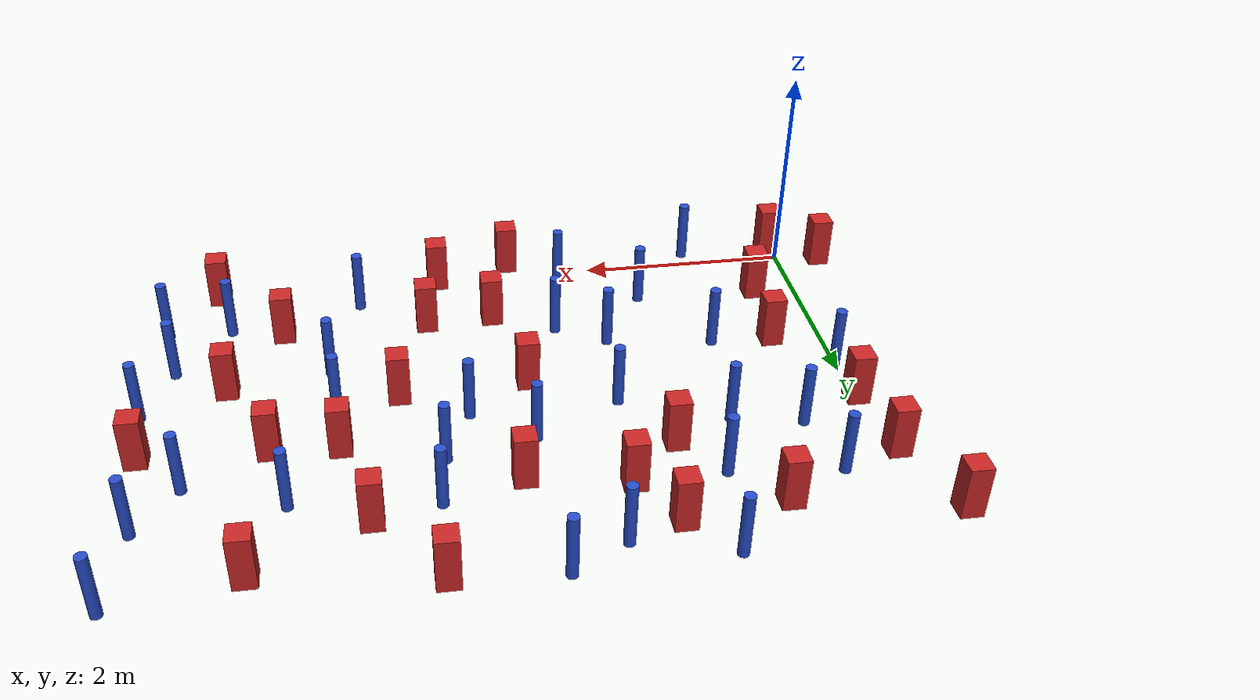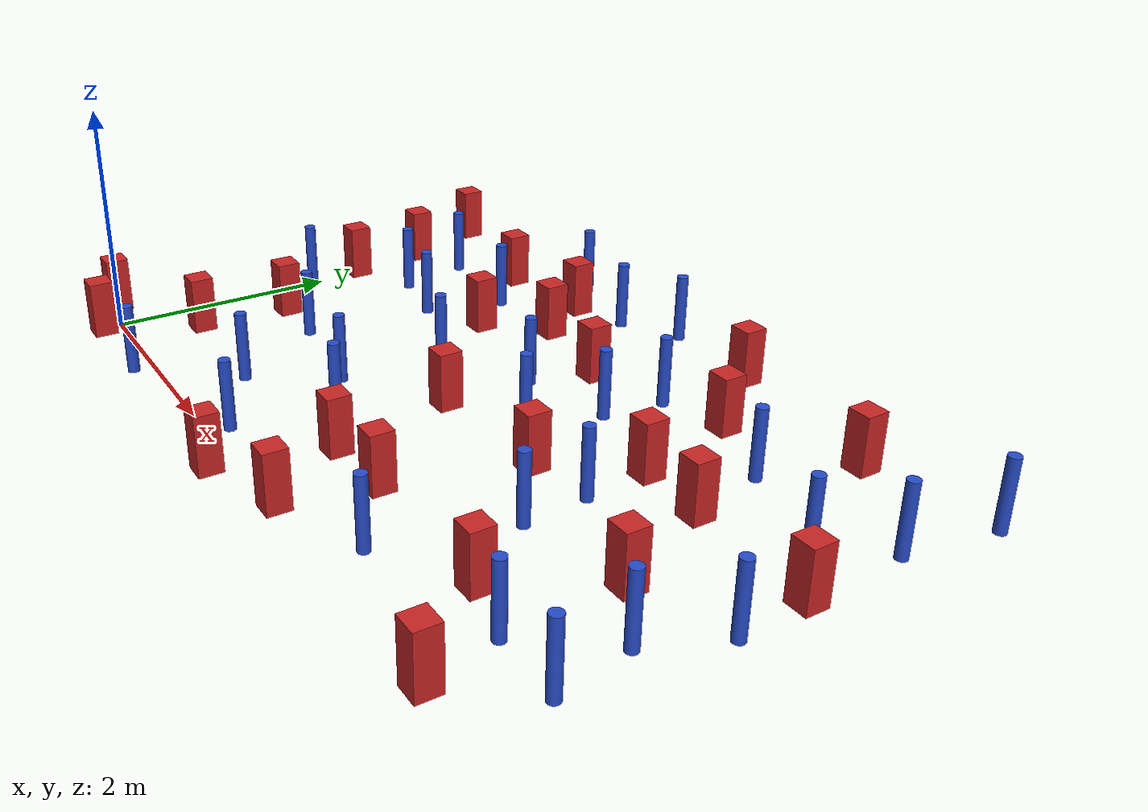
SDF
<sdf version="1.6">
 <model name="dense_30">
  <model name="pole_obstacle3">
   <static>true</static>
   <pose>0.546766999606 2.6899849425 7.38925637345e-09 -8.471706928e-08 1.2497676512e-08 -1.74513093015e-07</pose>
   <link name="link">
    <pose>0 0 0.3 0 -0 0</pose>
    <inertial>
     <mass>1</mass>
     <inertia><ixx>0.145833</ixx><ixy>0</ixy><ixz>0</ixz><iyy>0.145833</iyy><iyz>0</iyz><izz>0.125</izz></inertia>
    </inertial>
    <collision name="collision">
     <geometry><cylinder><radius>0.05</radius><length>.6</length></cylinder></geometry>
    </collision>
    <visual name="visual">
     <geometry><cylinder><radius>0.05</radius><length>.6</length></cylinder></geometry>
     <material>
      <script><name>Gazebo/Blue</name><uri>file://media/materials/scripts/gazebo.material</uri></script>
     </material>
    </visual>
   </link>
  </model>
  <model name="pole_obstacle7">
   <static>true</static>
   <pose>3.74739690199 3.30398144632 7.38925637345e-09 -8.47170692798e-08 1.24976764939e-08 -1.74513093025e-07</pose>
   <link name="link">
    <pose>0 0 0.3 0 -0 0</pose>
    <inertial>
     <mass>1</mass>
     <inertia><ixx>0.145833</ixx><ixy>0</ixy><ixz>0</ixz><iyy>0.145833</iyy><iyz>0</iyz><izz>0.125</izz></inertia>
    </inertial>
    <collision name="collision">
     <geometry><cylinder><radius>0.05</radius><length>.6</length></cylinder></geometry>
    </collision>
    <visual name="visual">
     <geometry><cylinder><radius>0.05</radius><length>.6</length></cylinder></geometry>
     <material>
      <script><name>Gazebo/Blue</name><uri>file://media/materials/scripts/gazebo.material</uri></script>
     </material>
    </visual>
   </link>
  </model>
  <model name="pole_obstacle17">
   <static>true</static>
   <pose>6.20936333357 3.32457884415 7.38925637345e-09 -8.47170692798e-08 1.24976764937e-08 -1.74513093023e-07</pose>
   <link name="link">
    <pose>0 0 0.3 0 -0 0</pose>
    <inertial>
     <mass>1</mass>
     <inertia><ixx>0.145833</ixx><ixy>0</ixy><ixz>0</ixz><iyy>0.145833</iyy><iyz>0</iyz><izz>0.125</izz></inertia>
    </inertial>
    <collision name="collision">
     <geometry><cylinder><radius>0.05</radius><length>.6</length></cylinder></geometry>
    </collision>
    <visual name="visual">
     <geometry><cylinder><radius>0.05</radius><length>.6</length></cylinder></geometry>
     <material>
      <script><name>Gazebo/Blue</name><uri>file://media/materials/scripts/gazebo.material</uri></script>
     </material>
    </visual>
   </link>
  </model>
  <model name="square_post_obstacle28">
   <static>true</static>
   <pose>5.1523337224 2.47797331997 1.91545236811e-07 -7.35059704564e-06 1.12565212e-07 2.39332434364e-05</pose>
   <link name="link">
    <pose>0 0 0.25 0 -0 0</pose>
    <inertial>
     <mass>100</mass>
     <inertia>
      <ixx>0.166667</ixx>
      <ixy>0</ixy>
      <ixz>0</ixz>
      <iyy>0.166667</iyy>
      <iyz>0</iyz>
      <izz>0.166667</izz>
     </inertia>
    </inertial>
    <collision name="collision"><geometry><box><size>.2 .2 .5</size></box></geometry></collision>
    <visual name="visual">
     <geometry><box><size>.2 .2 .5</size></box></geometry>
     <material>
      <script><name>Gazebo/Red</name><uri>file://media/materials/scripts/gazebo.material</uri></script>
     </material>
    </visual>
   </link>
  </model>
  <model name="pole_obstacle22">
   <static>true</static>
   <pose>2.84004689693 4.20362259301 7.38925637345e-09 -8.47170692798e-08 1.24976765033e-08 -1.74513093019e-07</pose>
   <link name="link">
    <pose>0 0 0.3 0 -0 0</pose>
    <inertial>
     <mass>1</mass>
     <inertia><ixx>0.145833</ixx><ixy>0</ixy><ixz>0</ixz><iyy>0.145833</iyy><iyz>0</iyz><izz>0.125</izz></inertia>
    </inertial>
    <collision name="collision">
     <geometry><cylinder><radius>0.05</radius><length>.6</length></cylinder></geometry>
    </collision>
    <visual name="visual">
     <geometry><cylinder><radius>0.05</radius><length>.6</length></cylinder></geometry>
     <material>
      <script><name>Gazebo/Blue</name><uri>file://media/materials/scripts/gazebo.material</uri></script>
     </material>
    </visual>
   </link>
  </model>
  <model name="pole_obstacle33">
   <static>true</static>
   <pose>6.04524268277 1.26037000073 7.38925637345e-09 -8.471706928e-08 1.24976765134e-08 -1.74513093015e-07</pose>
   <link name="link">
    <pose>0 0 0.3 0 -0 0</pose>
    <inertial>
     <mass>1</mass>
     <inertia><ixx>0.145833</ixx><ixy>0</ixy><ixz>0</ixz><iyy>0.145833</iyy><iyz>0</iyz><izz>0.125</izz></inertia>
    </inertial>
    <collision name="collision">
     <geometry><cylinder><radius>0.05</radius><length>.6</length></cylinder></geometry>
    </collision>
    <visual name="visual">
     <geometry><cylinder><radius>0.05</radius><length>.6</length></cylinder></geometry>
     <material>
      <script><name>Gazebo/Blue</name><uri>file://media/materials/scripts/gazebo.material</uri></script>
     </material>
    </visual>
   </link>
  </model>
  <model name="square_post_obstacle35">
   <static>true</static>
   <pose>-0.411803076474 3.93008149344 1.91545236811e-07 -7.35059704564e-06 1.12565212e-07 2.39332434364e-05</pose>
   <link name="link">
    <pose>0 0 0.25 0 -0 0</pose>
    <inertial>
     <mass>100</mass>
     <inertia>
      <ixx>0.166667</ixx>
      <ixy>0</ixy>
      <ixz>0</ixz>
      <iyy>0.166667</iyy>
      <iyz>0</iyz>
      <izz>0.166667</izz>
     </inertia>
    </inertial>
    <collision name="collision"><geometry><box><size>.2 .2 .5</size></box></geometry></collision>
    <visual name="visual">
     <geometry><box><size>.2 .2 .5</size></box></geometry>
     <material>
      <script><name>Gazebo/Red</name><uri>file://media/materials/scripts/gazebo.material</uri></script>
     </material>
    </visual>
   </link>
  </model>
  <model name="pole_obstacle35">
   <static>true</static>
   <pose>6.29903527453 1.85566580085 7.38925637345e-09 -8.471706928e-08 1.24976765134e-08 -1.74513093015e-07</pose>
   <link name="link">
    <pose>0 0 0.3 0 -0 0</pose>
    <inertial>
     <mass>1</mass>
     <inertia><ixx>0.145833</ixx><ixy>0</ixy><ixz>0</ixz><iyy>0.145833</iyy><iyz>0</iyz><izz>0.125</izz></inertia>
    </inertial>
    <collision name="collision">
     <geometry><cylinder><radius>0.05</radius><length>.6</length></cylinder></geometry>
    </collision>
    <visual name="visual">
     <geometry><cylinder><radius>0.05</radius><length>.6</length></cylinder></geometry>
     <material>
      <script><name>Gazebo/Blue</name><uri>file://media/materials/scripts/gazebo.material</uri></script>
     </material>
    </visual>
   </link>
  </model>
  <model name="square_post_obstacle41">
   <static>true</static>
   <pose>0.429046198631 0.628386670897 1.91545236811e-07 -7.35059704564e-06 1.12565212e-07 2.39332434364e-05</pose>
   <link name="link">
    <pose>0 0 0.25 0 -0 0</pose>
    <inertial>
     <mass>100</mass>
     <inertia>
      <ixx>0.166667</ixx>
      <ixy>0</ixy>
      <ixz>0</ixz>
      <iyy>0.166667</iyy>
      <iyz>0</iyz>
      <izz>0.166667</izz>
     </inertia>
    </inertial>
    <collision name="collision"><geometry><box><size>.2 .2 .5</size></box></geometry></collision>
    <visual name="visual">
     <geometry><box><size>.2 .2 .5</size></box></geometry>
     <material>
      <script><name>Gazebo/Red</name><uri>file://media/materials/scripts/gazebo.material</uri></script>
     </material>
    </visual>
   </link>
  </model>
  <model name="square_post_obstacle47">
   <static>true</static>
   <pose>-0.119099648137 3.15597819469 1.91545236811e-07 -7.35059704564e-06 1.12565212e-07 2.39332434364e-05</pose>
   <link name="link">
    <pose>0 0 0.25 0 -0 0</pose>
    <inertial>
     <mass>100</mass>
     <inertia>
      <ixx>0.166667</ixx>
      <ixy>0</ixy>
      <ixz>0</ixz>
      <iyy>0.166667</iyy>
      <iyz>0</iyz>
      <izz>0.166667</izz>
     </inertia>
    </inertial>
    <collision name="collision"><geometry><box><size>.2 .2 .5</size></box></geometry></collision>
    <visual name="visual">
     <geometry><box><size>.2 .2 .5</size></box></geometry>
     <material>
      <script><name>Gazebo/Red</name><uri>file://media/materials/scripts/gazebo.material</uri></script>
     </material>
    </visual>
   </link>
  </model>
  <model name="pole_obstacle50">
   <static>true</static>
   <pose>4.63285295188 1.41048805466 7.38925637345e-09 -8.471706928e-08 1.24976765134e-08 -1.74513093015e-07</pose>
   <link name="link">
    <pose>0 0 0.3 0 -0 0</pose>
    <inertial>
     <mass>1</mass>
     <inertia><ixx>0.145833</ixx><ixy>0</ixy><ixz>0</ixz><iyy>0.145833</iyy><iyz>0</iyz><izz>0.125</izz></inertia>
    </inertial>
    <collision name="collision">
     <geometry><cylinder><radius>0.05</radius><length>.6</length></cylinder></geometry>
    </collision>
    <visual name="visual">
     <geometry><cylinder><radius>0.05</radius><length>.6</length></cylinder></geometry>
     <material>
      <script><name>Gazebo/Blue</name><uri>file://media/materials/scripts/gazebo.material</uri></script>
     </material>
    </visual>
   </link>
  </model>
  <model name="square_post_obstacle53">
   <static>true</static>
   <pose>3.05797361296 3.10499686478 1.91545236811e-07 -7.35059704564e-06 1.12565212e-07 2.39332434364e-05</pose>
   <link name="link">
    <pose>0 0 0.25 0 -0 0</pose>
    <inertial>
     <mass>100</mass>
     <inertia>
      <ixx>0.166667</ixx>
      <ixy>0</ixy>
      <ixz>0</ixz>
      <iyy>0.166667</iyy>
      <iyz>0</iyz>
      <izz>0.166667</izz>
     </inertia>
    </inertial>
    <collision name="collision"><geometry><box><size>.2 .2 .5</size></box></geometry></collision>
    <visual name="visual">
     <geometry><box><size>.2 .2 .5</size></box></geometry>
     <material>
      <script><name>Gazebo/Red</name><uri>file://media/materials/scripts/gazebo.material</uri></script>
     </material>
    </visual>
   </link>
  </model>
  <model name="pole_obstacle57">
   <static>true</static>
   <pose>3.67862025897 2.76741316051 7.38925637345e-09 -8.47170692798e-08 1.24976764939e-08 -1.74513093025e-07</pose>
   <link name="link">
    <pose>0 0 0.3 0 -0 0</pose>
    <inertial>
     <mass>1</mass>
     <inertia><ixx>0.145833</ixx><ixy>0</ixy><ixz>0</ixz><iyy>0.145833</iyy><iyz>0</iyz><izz>0.125</izz></inertia>
    </inertial>
    <collision name="collision">
     <geometry><cylinder><radius>0.05</radius><length>.6</length></cylinder></geometry>
    </collision>
    <visual name="visual">
     <geometry><cylinder><radius>0.05</radius><length>.6</length></cylinder></geometry>
     <material>
      <script><name>Gazebo/Blue</name><uri>file://media/materials/scripts/gazebo.material</uri></script>
     </material>
    </visual>
   </link>
  </model>
  <model name="pole_obstacle58">
   <static>true</static>
   <pose>0.397705272501 3.34039945876 7.38925637345e-09 -8.471706928e-08 1.24976765084e-08 -1.74513093017e-07</pose>
   <link name="link">
    <pose>0 0 0.3 0 -0 0</pose>
    <inertial>
     <mass>1</mass>
     <inertia><ixx>0.145833</ixx><ixy>0</ixy><ixz>0</ixz><iyy>0.145833</iyy><iyz>0</iyz><izz>0.125</izz></inertia>
    </inertial>
    <collision name="collision">
     <geometry><cylinder><radius>0.05</radius><length>.6</length></cylinder></geometry>
    </collision>
    <visual name="visual">
     <geometry><cylinder><radius>0.05</radius><length>.6</length></cylinder></geometry>
     <material>
      <script><name>Gazebo/Blue</name><uri>file://media/materials/scripts/gazebo.material</uri></script>
     </material>
    </visual>
   </link>
  </model>
  <model name="square_post_obstacle66">
   <static>true</static>
   <pose>4.55335231712 2.51744634531 1.91545236811e-07 -7.35059704564e-06 1.12565212e-07 2.39332434364e-05</pose>
   <link name="link">
    <pose>0 0 0.25 0 -0 0</pose>
    <inertial>
     <mass>100</mass>
     <inertia>
      <ixx>0.166667</ixx>
      <ixy>0</ixy>
      <ixz>0</ixz>
      <iyy>0.166667</iyy>
      <iyz>0</iyz>
      <izz>0.166667</izz>
     </inertia>
    </inertial>
    <collision name="collision"><geometry><box><size>.2 .2 .5</size></box></geometry></collision>
    <visual name="visual">
     <geometry><box><size>.2 .2 .5</size></box></geometry>
     <material>
      <script><name>Gazebo/Red</name><uri>file://media/materials/scripts/gazebo.material</uri></script>
     </material>
    </visual>
   </link>
  </model>
  <model name="pole_obstacle64">
   <static>true</static>
   <pose>1.37551216052 3.24116758559 7.38925637345e-09 -8.47170692799e-08 1.24976765053e-08 -1.74513093017e-07</pose>
   <link name="link">
    <pose>0 0 0.3 0 -0 0</pose>
    <inertial>
     <mass>1</mass>
     <inertia><ixx>0.145833</ixx><ixy>0</ixy><ixz>0</ixz><iyy>0.145833</iyy><iyz>0</iyz><izz>0.125</izz></inertia>
    </inertial>
    <collision name="collision">
     <geometry><cylinder><radius>0.05</radius><length>.6</length></cylinder></geometry>
    </collision>
    <visual name="visual">
     <geometry><cylinder><radius>0.05</radius><length>.6</length></cylinder></geometry>
     <material>
      <script><name>Gazebo/Blue</name><uri>file://media/materials/scripts/gazebo.material</uri></script>
     </material>
    </visual>
   </link>
  </model>
  <model name="square_post_obstacle67">
   <static>true</static>
   <pose>3.07815158013 0.742495107593 1.91545236811e-07 -7.35059704564e-06 1.12565212e-07 2.39332434364e-05</pose>
   <link name="link">
    <pose>0 0 0.25 0 -0 0</pose>
    <inertial>
     <mass>100</mass>
     <inertia>
      <ixx>0.166667</ixx>
      <ixy>0</ixy>
      <ixz>0</ixz>
      <iyy>0.166667</iyy>
      <iyz>0</iyz>
      <izz>0.166667</izz>
     </inertia>
    </inertial>
    <collision name="collision"><geometry><box><size>.2 .2 .5</size></box></geometry></collision>
    <visual name="visual">
     <geometry><box><size>.2 .2 .5</size></box></geometry>
     <material>
      <script><name>Gazebo/Red</name><uri>file://media/materials/scripts/gazebo.material</uri></script>
     </material>
    </visual>
   </link>
  </model>
  <model name="pole_obstacle68">
   <static>true</static>
   <pose>2.34547046771 3.93124050635 7.38925637345e-09 -8.47170692798e-08 1.24976764939e-08 -1.74513093025e-07</pose>
   <link name="link">
    <pose>0 0 0.3 0 -0 0</pose>
    <inertial>
     <mass>1</mass>
     <inertia><ixx>0.145833</ixx><ixy>0</ixy><ixz>0</ixz><iyy>0.145833</iyy><iyz>0</iyz><izz>0.125</izz></inertia>
    </inertial>
    <collision name="collision">
     <geometry><cylinder><radius>0.05</radius><length>.6</length></cylinder></geometry>
    </collision>
    <visual name="visual">
     <geometry><cylinder><radius>0.05</radius><length>.6</length></cylinder></geometry>
     <material>
      <script><name>Gazebo/Blue</name><uri>file://media/materials/scripts/gazebo.material</uri></script>
     </material>
    </visual>
   </link>
  </model>
  <model name="pole_obstacle73">
   <static>true</static>
   <pose>4.99015887674 3.16644557597 7.38925637345e-09 -8.47170692798e-08 1.24976764937e-08 -1.74513093023e-07</pose>
   <link name="link">
    <pose>0 0 0.3 0 -0 0</pose>
    <inertial>
     <mass>1</mass>
     <inertia><ixx>0.145833</ixx><ixy>0</ixy><ixz>0</ixz><iyy>0.145833</iyy><iyz>0</iyz><izz>0.125</izz></inertia>
    </inertial>
    <collision name="collision">
     <geometry><cylinder><radius>0.05</radius><length>.6</length></cylinder></geometry>
    </collision>
    <visual name="visual">
     <geometry><cylinder><radius>0.05</radius><length>.6</length></cylinder></geometry>
     <material>
      <script><name>Gazebo/Blue</name><uri>file://media/materials/scripts/gazebo.material</uri></script>
     </material>
    </visual>
   </link>
  </model>
  <model name="square_post_obstacle77">
   <static>true</static>
   <pose>5.28018869237 3.92317365067 1.91545236811e-07 -7.35059704564e-06 1.12565212e-07 2.39332434364e-05</pose>
   <link name="link">
    <pose>0 0 0.25 0 -0 0</pose>
    <inertial>
     <mass>100</mass>
     <inertia>
      <ixx>0.166667</ixx>
      <ixy>0</ixy>
      <ixz>0</ixz>
      <iyy>0.166667</iyy>
      <iyz>0</iyz>
      <izz>0.166667</izz>
     </inertia>
    </inertial>
    <collision name="collision"><geometry><box><size>.2 .2 .5</size></box></geometry></collision>
    <visual name="visual">
     <geometry><box><size>.2 .2 .5</size></box></geometry>
     <material>
      <script><name>Gazebo/Red</name><uri>file://media/materials/scripts/gazebo.material</uri></script>
     </material>
    </visual>
   </link>
  </model>
  <model name="square_post_obstacle78">
   <static>true</static>
   <pose>5.55456929234 1.58961938231 1.91545236811e-07 -7.35059704564e-06 1.12565212e-07 2.39332434364e-05</pose>
   <link name="link">
    <pose>0 0 0.25 0 -0 0</pose>
    <inertial>
     <mass>100</mass>
     <inertia>
      <ixx>0.166667</ixx>
      <ixy>0</ixy>
      <ixz>0</ixz>
      <iyy>0.166667</iyy>
      <iyz>0</iyz>
      <izz>0.166667</izz>
     </inertia>
    </inertial>
    <collision name="collision"><geometry><box><size>.2 .2 .5</size></box></geometry></collision>
    <visual name="visual">
     <geometry><box><size>.2 .2 .5</size></box></geometry>
     <material>
      <script><name>Gazebo/Red</name><uri>file://media/materials/scripts/gazebo.material</uri></script>
     </material>
    </visual>
   </link>
  </model>
  <model name="pole_obstacle88">
   <static>true</static>
   <pose>2.0343752136 1.26893128138 7.38925637345e-09 -8.471706928e-08 1.24976765091e-08 -1.74513093016e-07</pose>
   <link name="link">
    <pose>0 0 0.3 0 -0 0</pose>
    <inertial>
     <mass>1</mass>
     <inertia><ixx>0.145833</ixx><ixy>0</ixy><ixz>0</ixz><iyy>0.145833</iyy><iyz>0</iyz><izz>0.125</izz></inertia>
    </inertial>
    <collision name="collision">
     <geometry><cylinder><radius>0.05</radius><length>.6</length></cylinder></geometry>
    </collision>
    <visual name="visual">
     <geometry><cylinder><radius>0.05</radius><length>.6</length></cylinder></geometry>
     <material>
      <script><name>Gazebo/Blue</name><uri>file://media/materials/scripts/gazebo.material</uri></script>
     </material>
    </visual>
   </link>
  </model>
  <model name="pole_obstacle89">
   <static>true</static>
   <pose>4.34190754353 0.352028006719 7.38925637345e-09 -8.47170692798e-08 1.24976765003e-08 -1.7451309302e-07</pose>
   <link name="link">
    <pose>0 0 0.3 0 -0 0</pose>
    <inertial>
     <mass>1</mass>
     <inertia><ixx>0.145833</ixx><ixy>0</ixy><ixz>0</ixz><iyy>0.145833</iyy><iyz>0</iyz><izz>0.125</izz></inertia>
    </inertial>
    <collision name="collision">
     <geometry><cylinder><radius>0.05</radius><length>.6</length></cylinder></geometry>
    </collision>
    <visual name="visual">
     <geometry><cylinder><radius>0.05</radius><length>.6</length></cylinder></geometry>
     <material>
      <script><name>Gazebo/Blue</name><uri>file://media/materials/scripts/gazebo.material</uri></script>
     </material>
    </visual>
   </link>
  </model>
  <model name="pole_obstacle90">
   <static>true</static>
   <pose>5.85637389648 2.85437994238 7.38925637345e-09 -8.47170692798e-08 1.24976764937e-08 -1.74513093023e-07</pose>
   <link name="link">
    <pose>0 0 0.3 0 -0 0</pose>
    <inertial>
     <mass>1</mass>
     <inertia><ixx>0.145833</ixx><ixy>0</ixy><ixz>0</ixz><iyy>0.145833</iyy><iyz>0</iyz><izz>0.125</izz></inertia>
    </inertial>
    <collision name="collision">
     <geometry><cylinder><radius>0.05</radius><length>.6</length></cylinder></geometry>
    </collision>
    <visual name="visual">
     <geometry><cylinder><radius>0.05</radius><length>.6</length></cylinder></geometry>
     <material>
      <script><name>Gazebo/Blue</name><uri>file://media/materials/scripts/gazebo.material</uri></script>
     </material>
    </visual>
   </link>
  </model>
  <model name="square_post_obstacle83">
   <static>true</static>
   <pose>5.71236827532 0.0427110932242 1.91545236811e-07 -7.35059704564e-06 1.12565212e-07 2.39332434364e-05</pose>
   <link name="link">
    <pose>0 0 0.25 0 -0 0</pose>
    <inertial>
     <mass>100</mass>
     <inertia>
      <ixx>0.166667</ixx>
      <ixy>0</ixy>
      <ixz>0</ixz>
      <iyy>0.166667</iyy>
      <iyz>0</iyz>
      <izz>0.166667</izz>
     </inertia>
    </inertial>
    <collision name="collision"><geometry><box><size>.2 .2 .5</size></box></geometry></collision>
    <visual name="visual">
     <geometry><box><size>.2 .2 .5</size></box></geometry>
     <material>
      <script><name>Gazebo/Red</name><uri>file://media/materials/scripts/gazebo.material</uri></script>
     </material>
    </visual>
   </link>
  </model>
  <model name="square_post_obstacle96">
   <static>true</static>
   <pose>2.83278373832 -0.183631623349 1.91545236811e-07 -7.35059704564e-06 1.12565212e-07 2.39332434364e-05</pose>
   <link name="link">
    <pose>0 0 0.25 0 -0 0</pose>
    <inertial>
     <mass>100</mass>
     <inertia>
      <ixx>0.166667</ixx>
      <ixy>0</ixy>
      <ixz>0</ixz>
      <iyy>0.166667</iyy>
      <iyz>0</iyz>
      <izz>0.166667</izz>
     </inertia>
    </inertial>
    <collision name="collision"><geometry><box><size>.2 .2 .5</size></box></geometry></collision>
    <visual name="visual">
     <geometry><box><size>.2 .2 .5</size></box></geometry>
     <material>
      <script><name>Gazebo/Red</name><uri>file://media/materials/scripts/gazebo.material</uri></script>
     </material>
    </visual>
   </link>
  </model>
  <model name="square_post_obstacle98">
   <static>true</static>
   <pose>3.77141077448 4.14343351096 1.91545236811e-07 -7.35059704564e-06 1.12565212e-07 2.39332434364e-05</pose>
   <link name="link">
    <pose>0 0 0.25 0 -0 0</pose>
    <inertial>
     <mass>100</mass>
     <inertia>
      <ixx>0.166667</ixx>
      <ixy>0</ixy>
      <ixz>0</ixz>
      <iyy>0.166667</iyy>
      <iyz>0</iyz>
      <izz>0.166667</izz>
     </inertia>
    </inertial>
    <collision name="collision"><geometry><box><size>.2 .2 .5</size></box></geometry></collision>
    <visual name="visual">
     <geometry><box><size>.2 .2 .5</size></box></geometry>
     <material>
      <script><name>Gazebo/Red</name><uri>file://media/materials/scripts/gazebo.material</uri></script>
     </material>
    </visual>
   </link>
  </model>
  <model name="square_post_obstacle103">
   <static>true</static>
   <pose>0.962811556818 3.64686974535 1.91545236811e-07 -7.35059704564e-06 1.12565212e-07 2.39332434364e-05</pose>
   <link name="link">
    <pose>0 0 0.25 0 -0 0</pose>
    <inertial>
     <mass>100</mass>
     <inertia>
      <ixx>0.166667</ixx>
      <ixy>0</ixy>
      <ixz>0</ixz>
      <iyy>0.166667</iyy>
      <iyz>0</iyz>
      <izz>0.166667</izz>
     </inertia>
    </inertial>
    <collision name="collision"><geometry><box><size>.2 .2 .5</size></box></geometry></collision>
    <visual name="visual">
     <geometry><box><size>.2 .2 .5</size></box></geometry>
     <material>
      <script><name>Gazebo/Red</name><uri>file://media/materials/scripts/gazebo.material</uri></script>
     </material>
    </visual>
   </link>
  </model>
  <model name="square_post_obstacle108">
   <static>true</static>
   <pose>0.0606719167751 -0.168348802644 1.91545236811e-07 -7.35059704564e-06 1.12565212e-07 2.39332434364e-05</pose>
   <link name="link">
    <pose>0 0 0.25 0 -0 0</pose>
    <inertial>
     <mass>100</mass>
     <inertia>
      <ixx>0.166667</ixx>
      <ixy>0</ixy>
      <ixz>0</ixz>
      <iyy>0.166667</iyy>
      <iyz>0</iyz>
      <izz>0.166667</izz>
     </inertia>
    </inertial>
    <collision name="collision"><geometry><box><size>.2 .2 .5</size></box></geometry></collision>
    <visual name="visual">
     <geometry><box><size>.2 .2 .5</size></box></geometry>
     <material>
      <script><name>Gazebo/Red</name><uri>file://media/materials/scripts/gazebo.material</uri></script>
     </material>
    </visual>
   </link>
  </model>
  <model name="square_post_obstacle109">
   <static>true</static>
   <pose>3.55812603229 0.0457568674687 1.91545236811e-07 -7.35059704564e-06 1.12565212e-07 2.39332434364e-05</pose>
   <link name="link">
    <pose>0 0 0.25 0 -0 0</pose>
    <inertial>
     <mass>100</mass>
     <inertia>
      <ixx>0.166667</ixx>
      <ixy>0</ixy>
      <ixz>0</ixz>
      <iyy>0.166667</iyy>
      <iyz>0</iyz>
      <izz>0.166667</izz>
     </inertia>
    </inertial>
    <collision name="collision"><geometry><box><size>.2 .2 .5</size></box></geometry></collision>
    <visual name="visual">
     <geometry><box><size>.2 .2 .5</size></box></geometry>
     <material>
      <script><name>Gazebo/Red</name><uri>file://media/materials/scripts/gazebo.material</uri></script>
     </material>
    </visual>
   </link>
  </model>
  <model name="pole_obstacle128">
   <static>true</static>
   <pose>6.34316117 4.1224485483 7.38925637345e-09 -8.47170692796e-08 1.24976764786e-08 -1.74513093032e-07</pose>
   <link name="link">
    <pose>0 0 0.3 0 -0 0</pose>
    <inertial>
     <mass>1</mass>
     <inertia><ixx>0.145833</ixx><ixy>0</ixy><ixz>0</ixz><iyy>0.145833</iyy><iyz>0</iyz><izz>0.125</izz></inertia>
    </inertial>
    <collision name="collision">
     <geometry><cylinder><radius>0.05</radius><length>.6</length></cylinder></geometry>
    </collision>
    <visual name="visual">
     <geometry><cylinder><radius>0.05</radius><length>.6</length></cylinder></geometry>
     <material>
      <script><name>Gazebo/Blue</name><uri>file://media/materials/scripts/gazebo.material</uri></script>
     </material>
    </visual>
   </link>
  </model>
  <model name="pole_obstacle139">
   <static>true</static>
   <pose>2.88572387047 2.58926678594 7.38925637345e-09 -8.47170692798e-08 1.24976764939e-08 -1.74513093025e-07</pose>
   <link name="link">
    <pose>0 0 0.3 0 -0 0</pose>
    <inertial>
     <mass>1</mass>
     <inertia><ixx>0.145833</ixx><ixy>0</ixy><ixz>0</ixz><iyy>0.145833</iyy><iyz>0</iyz><izz>0.125</izz></inertia>
    </inertial>
    <collision name="collision">
     <geometry><cylinder><radius>0.05</radius><length>.6</length></cylinder></geometry>
    </collision>
    <visual name="visual">
     <geometry><cylinder><radius>0.05</radius><length>.6</length></cylinder></geometry>
     <material>
      <script><name>Gazebo/Blue</name><uri>file://media/materials/scripts/gazebo.material</uri></script>
     </material>
    </visual>
   </link>
  </model>
  <model name="square_post_obstacle123">
   <static>true</static>
   <pose>0.485946972988 1.43898012547 1.91545236811e-07 -7.35059704564e-06 1.12565212e-07 2.39332434364e-05</pose>
   <link name="link">
    <pose>0 0 0.25 0 -0 0</pose>
    <inertial>
     <mass>100</mass>
     <inertia>
      <ixx>0.166667</ixx>
      <ixy>0</ixy>
      <ixz>0</ixz>
      <iyy>0.166667</iyy>
      <iyz>0</iyz>
      <izz>0.166667</izz>
     </inertia>
    </inertial>
    <collision name="collision"><geometry><box><size>.2 .2 .5</size></box></geometry></collision>
    <visual name="visual">
     <geometry><box><size>.2 .2 .5</size></box></geometry>
     <material>
      <script><name>Gazebo/Red</name><uri>file://media/materials/scripts/gazebo.material</uri></script>
     </material>
    </visual>
   </link>
  </model>
  <model name="square_post_obstacle124">
   <static>true</static>
   <pose>6.25428705781 2.44244304308 1.91545236811e-07 -7.35059704564e-06 1.12565212e-07 2.39332434364e-05</pose>
   <link name="link">
    <pose>0 0 0.25 0 -0 0</pose>
    <inertial>
     <mass>100</mass>
     <inertia>
      <ixx>0.166667</ixx>
      <ixy>0</ixy>
      <ixz>0</ixz>
      <iyy>0.166667</iyy>
      <iyz>0</iyz>
      <izz>0.166667</izz>
     </inertia>
    </inertial>
    <collision name="collision"><geometry><box><size>.2 .2 .5</size></box></geometry></collision>
    <visual name="visual">
     <geometry><box><size>.2 .2 .5</size></box></geometry>
     <material>
      <script><name>Gazebo/Red</name><uri>file://media/materials/scripts/gazebo.material</uri></script>
     </material>
    </visual>
   </link>
  </model>
  <model name="pole_obstacle143">
   <static>true</static>
   <pose>5.56904722759 0.641976653906 7.38925637345e-09 -8.47170692799e-08 1.24976765038e-08 -1.74513093018e-07</pose>
   <link name="link">
    <pose>0 0 0.3 0 -0 0</pose>
    <inertial>
     <mass>1</mass>
     <inertia><ixx>0.145833</ixx><ixy>0</ixy><ixz>0</ixz><iyy>0.145833</iyy><iyz>0</iyz><izz>0.125</izz></inertia>
    </inertial>
    <collision name="collision">
     <geometry><cylinder><radius>0.05</radius><length>.6</length></cylinder></geometry>
    </collision>
    <visual name="visual">
     <geometry><cylinder><radius>0.05</radius><length>.6</length></cylinder></geometry>
     <material>
      <script><name>Gazebo/Blue</name><uri>file://media/materials/scripts/gazebo.material</uri></script>
     </material>
    </visual>
   </link>
  </model>
  <model name="pole_obstacle146">
   <static>true</static>
   <pose>1.59392099419 0.588784607261 7.38925637345e-09 -8.47170692799e-08 1.24976765075e-08 -1.74513093017e-07</pose>
   <link name="link">
    <pose>0 0 0.3 0 -0 0</pose>
    <inertial>
     <mass>1</mass>
     <inertia><ixx>0.145833</ixx><ixy>0</ixy><ixz>0</ixz><iyy>0.145833</iyy><iyz>0</iyz><izz>0.125</izz></inertia>
    </inertial>
    <collision name="collision">
     <geometry><cylinder><radius>0.05</radius><length>.6</length></cylinder></geometry>
    </collision>
    <visual name="visual">
     <geometry><cylinder><radius>0.05</radius><length>.6</length></cylinder></geometry>
     <material>
      <script><name>Gazebo/Blue</name><uri>file://media/materials/scripts/gazebo.material</uri></script>
     </material>
    </visual>
   </link>
  </model>
  <model name="pole_obstacle147">
   <static>true</static>
   <pose>0.00451915030473 1.90810750088 7.38925637345e-09 -8.47170692799e-08 1.24976764949e-08 -1.74513093023e-07</pose>
   <link name="link">
    <pose>0 0 0.3 0 -0 0</pose>
    <inertial>
     <mass>1</mass>
     <inertia><ixx>0.145833</ixx><ixy>0</ixy><ixz>0</ixz><iyy>0.145833</iyy><iyz>0</iyz><izz>0.125</izz></inertia>
    </inertial>
    <collision name="collision">
     <geometry><cylinder><radius>0.05</radius><length>.6</length></cylinder></geometry>
    </collision>
    <visual name="visual">
     <geometry><cylinder><radius>0.05</radius><length>.6</length></cylinder></geometry>
     <material>
      <script><name>Gazebo/Blue</name><uri>file://media/materials/scripts/gazebo.material</uri></script>
     </material>
    </visual>
   </link>
  </model>
  <model name="square_post_obstacle139">
   <static>true</static>
   <pose>5.06679464882 0.777560377866 1.91545236811e-07 -7.35059704564e-06 1.12565212e-07 2.39332434364e-05</pose>
   <link name="link">
    <pose>0 0 0.25 0 -0 0</pose>
    <inertial>
     <mass>100</mass>
     <inertia>
      <ixx>0.166667</ixx>
      <ixy>0</ixy>
      <ixz>0</ixz>
      <iyy>0.166667</iyy>
      <iyz>0</iyz>
      <izz>0.166667</izz>
     </inertia>
    </inertial>
    <collision name="collision"><geometry><box><size>.2 .2 .5</size></box></geometry></collision>
    <visual name="visual">
     <geometry><box><size>.2 .2 .5</size></box></geometry>
     <material>
      <script><name>Gazebo/Red</name><uri>file://media/materials/scripts/gazebo.material</uri></script>
     </material>
    </visual>
   </link>
  </model>
  <model name="square_post_obstacle140">
   <static>true</static>
   <pose>2.86354151204 1.80228468184 1.91545236811e-07 -7.35059704564e-06 1.12565212e-07 2.39332434364e-05</pose>
   <link name="link">
    <pose>0 0 0.25 0 -0 0</pose>
    <inertial>
     <mass>100</mass>
     <inertia>
      <ixx>0.166667</ixx>
      <ixy>0</ixy>
      <ixz>0</ixz>
      <iyy>0.166667</iyy>
      <iyz>0</iyz>
      <izz>0.166667</izz>
     </inertia>
    </inertial>
    <collision name="collision"><geometry><box><size>.2 .2 .5</size></box></geometry></collision>
    <visual name="visual">
     <geometry><box><size>.2 .2 .5</size></box></geometry>
     <material>
      <script><name>Gazebo/Red</name><uri>file://media/materials/scripts/gazebo.material</uri></script>
     </material>
    </visual>
   </link>
  </model>
  <model name="square_post_obstacle142">
   <static>true</static>
   <pose>4.31687158032 3.44465338884 1.91545236811e-07 -7.35059704564e-06 1.12565212e-07 2.39332434364e-05</pose>
   <link name="link">
    <pose>0 0 0.25 0 -0 0</pose>
    <inertial>
     <mass>100</mass>
     <inertia>
      <ixx>0.166667</ixx>
      <ixy>0</ixy>
      <ixz>0</ixz>
      <iyy>0.166667</iyy>
      <iyz>0</iyz>
      <izz>0.166667</izz>
     </inertia>
    </inertial>
    <collision name="collision"><geometry><box><size>.2 .2 .5</size></box></geometry></collision>
    <visual name="visual">
     <geometry><box><size>.2 .2 .5</size></box></geometry>
     <material>
      <script><name>Gazebo/Red</name><uri>file://media/materials/scripts/gazebo.material</uri></script>
     </material>
    </visual>
   </link>
  </model>
  <model name="pole_obstacle156">
   <static>true</static>
   <pose>4.58448338189 1.96914910357 7.38925637345e-09 -8.471706928e-08 1.24976765177e-08 -1.74513093012e-07</pose>
   <link name="link">
    <pose>0 0 0.3 0 -0 0</pose>
    <inertial>
     <mass>1</mass>
     <inertia><ixx>0.145833</ixx><ixy>0</ixy><ixz>0</ixz><iyy>0.145833</iyy><iyz>0</iyz><izz>0.125</izz></inertia>
    </inertial>
    <collision name="collision">
     <geometry><cylinder><radius>0.05</radius><length>.6</length></cylinder></geometry>
    </collision>
    <visual name="visual">
     <geometry><cylinder><radius>0.05</radius><length>.6</length></cylinder></geometry>
     <material>
      <script><name>Gazebo/Blue</name><uri>file://media/materials/scripts/gazebo.material</uri></script>
     </material>
    </visual>
   </link>
  </model>
  <model name="square_post_obstacle153">
   <static>true</static>
   <pose>2.17187419314 3.27377666658 1.91545236811e-07 -7.35059704564e-06 1.12565212e-07 2.39332434364e-05</pose>
   <link name="link">
    <pose>0 0 0.25 0 -0 0</pose>
    <inertial>
     <mass>100</mass>
     <inertia>
      <ixx>0.166667</ixx>
      <ixy>0</ixy>
      <ixz>0</ixz>
      <iyy>0.166667</iyy>
      <iyz>0</iyz>
      <izz>0.166667</izz>
     </inertia>
    </inertial>
    <collision name="collision"><geometry><box><size>.2 .2 .5</size></box></geometry></collision>
    <visual name="visual">
     <geometry><box><size>.2 .2 .5</size></box></geometry>
     <material>
      <script><name>Gazebo/Red</name><uri>file://media/materials/scripts/gazebo.material</uri></script>
     </material>
    </visual>
   </link>
  </model>
  <model name="pole_obstacle161">
   <static>true</static>
   <pose>0.970532264458 -0.169459291489 7.38925637345e-09 -8.471706928e-08 1.2497676512e-08 -1.74513093014e-07</pose>
   <link name="link">
    <pose>0 0 0.3 0 -0 0</pose>
    <inertial>
     <mass>1</mass>
     <inertia><ixx>0.145833</ixx><ixy>0</ixy><ixz>0</ixz><iyy>0.145833</iyy><iyz>0</iyz><izz>0.125</izz></inertia>
    </inertial>
    <collision name="collision">
     <geometry><cylinder><radius>0.05</radius><length>.6</length></cylinder></geometry>
    </collision>
    <visual name="visual">
     <geometry><cylinder><radius>0.05</radius><length>.6</length></cylinder></geometry>
     <material>
      <script><name>Gazebo/Blue</name><uri>file://media/materials/scripts/gazebo.material</uri></script>
     </material>
    </visual>
   </link>
  </model>
  <model name="square_post_obstacle161">
   <static>true</static>
   <pose>-0.0234518218023 2.41390805467 1.91545236811e-07 -7.35059704564e-06 1.12565212e-07 2.39332434364e-05</pose>
   <link name="link">
    <pose>0 0 0.25 0 -0 0</pose>
    <inertial>
     <mass>100</mass>
     <inertia>
      <ixx>0.166667</ixx>
      <ixy>0</ixy>
      <ixz>0</ixz>
      <iyy>0.166667</iyy>
      <iyz>0</iyz>
      <izz>0.166667</izz>
     </inertia>
    </inertial>
    <collision name="collision"><geometry><box><size>.2 .2 .5</size></box></geometry></collision>
    <visual name="visual">
     <geometry><box><size>.2 .2 .5</size></box></geometry>
     <material>
      <script><name>Gazebo/Red</name><uri>file://media/materials/scripts/gazebo.material</uri></script>
     </material>
    </visual>
   </link>
  </model>
  <model name="square_post_obstacle163">
   <static>true</static>
   <pose>1.72017613019 2.81650073957 1.91545236811e-07 -7.35059704564e-06 1.12565212e-07 2.39332434364e-05</pose>
   <link name="link">
    <pose>0 0 0.25 0 -0 0</pose>
    <inertial>
     <mass>100</mass>
     <inertia>
      <ixx>0.166667</ixx>
      <ixy>0</ixy>
      <ixz>0</ixz>
      <iyy>0.166667</iyy>
      <iyz>0</iyz>
      <izz>0.166667</izz>
     </inertia>
    </inertial>
    <collision name="collision"><geometry><box><size>.2 .2 .5</size></box></geometry></collision>
    <visual name="visual">
     <geometry><box><size>.2 .2 .5</size></box></geometry>
     <material>
      <script><name>Gazebo/Red</name><uri>file://media/materials/scripts/gazebo.material</uri></script>
     </material>
    </visual>
   </link>
  </model>
  <model name="pole_obstacle178">
   <static>true</static>
   <pose>1.16806310443 2.55786432028 7.38925637345e-09 -8.47170692799e-08 1.24976765053e-08 -1.74513093017e-07</pose>
   <link name="link">
    <pose>0 0 0.3 0 -0 0</pose>
    <inertial>
     <mass>1</mass>
     <inertia><ixx>0.145833</ixx><ixy>0</ixy><ixz>0</ixz><iyy>0.145833</iyy><iyz>0</iyz><izz>0.125</izz></inertia>
    </inertial>
    <collision name="collision">
     <geometry><cylinder><radius>0.05</radius><length>.6</length></cylinder></geometry>
    </collision>
    <visual name="visual">
     <geometry><cylinder><radius>0.05</radius><length>.6</length></cylinder></geometry>
     <material>
      <script><name>Gazebo/Blue</name><uri>file://media/materials/scripts/gazebo.material</uri></script>
     </material>
    </visual>
   </link>
  </model>
  <model name="pole_obstacle181">
   <static>true</static>
   <pose>1.49840865579 4.16058623089 7.38925637345e-09 -8.47170692799e-08 1.24976765033e-08 -1.74513093018e-07</pose>
   <link name="link">
    <pose>0 0 0.3 0 -0 0</pose>
    <inertial>
     <mass>1</mass>
     <inertia><ixx>0.145833</ixx><ixy>0</ixy><ixz>0</ixz><iyy>0.145833</iyy><iyz>0</iyz><izz>0.125</izz></inertia>
    </inertial>
    <collision name="collision">
     <geometry><cylinder><radius>0.05</radius><length>.6</length></cylinder></geometry>
    </collision>
    <visual name="visual">
     <geometry><cylinder><radius>0.05</radius><length>.6</length></cylinder></geometry>
     <material>
      <script><name>Gazebo/Blue</name><uri>file://media/materials/scripts/gazebo.material</uri></script>
     </material>
    </visual>
   </link>
  </model>
  <model name="square_post_obstacle176">
   <static>true</static>
   <pose>1.87148981001 3.76761066779 1.91545236811e-07 -7.35059704564e-06 1.12565212e-07 2.39332434364e-05</pose>
   <link name="link">
    <pose>0 0 0.25 0 -0 0</pose>
    <inertial>
     <mass>100</mass>
     <inertia>
      <ixx>0.166667</ixx>
      <ixy>0</ixy>
      <ixz>0</ixz>
      <iyy>0.166667</iyy>
      <iyz>0</iyz>
      <izz>0.166667</izz>
     </inertia>
    </inertial>
    <collision name="collision"><geometry><box><size>.2 .2 .5</size></box></geometry></collision>
    <visual name="visual">
     <geometry><box><size>.2 .2 .5</size></box></geometry>
     <material>
      <script><name>Gazebo/Red</name><uri>file://media/materials/scripts/gazebo.material</uri></script>
     </material>
    </visual>
   </link>
  </model>
  <model name="square_post_obstacle177">
   <static>true</static>
   <pose>-0.406898581223 0.105148186506 1.91545236811e-07 -7.35059704564e-06 1.12565212e-07 2.39332434364e-05</pose>
   <link name="link">
    <pose>0 0 0.25 0 -0 0</pose>
    <inertial>
     <mass>100</mass>
     <inertia>
      <ixx>0.166667</ixx>
      <ixy>0</ixy>
      <ixz>0</ixz>
      <iyy>0.166667</iyy>
      <iyz>0</iyz>
      <izz>0.166667</izz>
     </inertia>
    </inertial>
    <collision name="collision"><geometry><box><size>.2 .2 .5</size></box></geometry></collision>
    <visual name="visual">
     <geometry><box><size>.2 .2 .5</size></box></geometry>
     <material>
      <script><name>Gazebo/Red</name><uri>file://media/materials/scripts/gazebo.material</uri></script>
     </material>
    </visual>
   </link>
  </model>
  <model name="square_post_obstacle197">
   <static>true</static>
   <pose>3.71083884828 0.775814005364 1.91545236811e-07 -7.35059704564e-06 1.12565212e-07 2.39332434364e-05</pose>
   <link name="link">
    <pose>0 0 0.25 0 -0 0</pose>
    <inertial>
     <mass>100</mass>
     <inertia>
      <ixx>0.166667</ixx>
      <ixy>0</ixy>
      <ixz>0</ixz>
      <iyy>0.166667</iyy>
      <iyz>0</iyz>
      <izz>0.166667</izz>
     </inertia>
    </inertial>
    <collision name="collision"><geometry><box><size>.2 .2 .5</size></box></geometry></collision>
    <visual name="visual">
     <geometry><box><size>.2 .2 .5</size></box></geometry>
     <material>
      <script><name>Gazebo/Red</name><uri>file://media/materials/scripts/gazebo.material</uri></script>
     </material>
    </visual>
   </link>
  </model>
  <model name="pole_obstacle191">
   <static>true</static>
   <pose>3.4281478886 2.19918133852 7.38925637345e-09 -8.47170692798e-08 1.24976764939e-08 -1.74513093025e-07</pose>
   <link name="link">
    <pose>0 0 0.3 0 -0 0</pose>
    <inertial>
     <mass>1</mass>
     <inertia><ixx>0.145833</ixx><ixy>0</ixy><ixz>0</ixz><iyy>0.145833</iyy><iyz>0</iyz><izz>0.125</izz></inertia>
    </inertial>
    <collision name="collision">
     <geometry><cylinder><radius>0.05</radius><length>.6</length></cylinder></geometry>
    </collision>
    <visual name="visual">
     <geometry><cylinder><radius>0.05</radius><length>.6</length></cylinder></geometry>
     <material>
      <script><name>Gazebo/Blue</name><uri>file://media/materials/scripts/gazebo.material</uri></script>
     </material>
    </visual>
   </link>
  </model>
  <model name="square_post_obstacle214">
   <static>true</static>
   <pose>4.02772315268 1.86914504152 1.91545236811e-07 -7.35059704564e-06 1.12565212e-07 2.39332434364e-05</pose>
   <link name="link">
    <pose>0 0 0.25 0 -0 0</pose>
    <inertial>
     <mass>100</mass>
     <inertia>
      <ixx>0.166667</ixx>
      <ixy>0</ixy>
      <ixz>0</ixz>
      <iyy>0.166667</iyy>
      <iyz>0</iyz>
      <izz>0.166667</izz>
     </inertia>
    </inertial>
    <collision name="collision"><geometry><box><size>.2 .2 .5</size></box></geometry></collision>
    <visual name="visual">
     <geometry><box><size>.2 .2 .5</size></box></geometry>
     <material>
      <script><name>Gazebo/Red</name><uri>file://media/materials/scripts/gazebo.material</uri></script>
     </material>
    </visual>
   </link>
  </model>
  <model name="pole_obstacle204">
   <static>true</static>
   <pose>2.34386681474 0.175165786549 7.38925637345e-09 -8.47170692801e-08 1.24976765195e-08 -1.74513093011e-07</pose>
   <link name="link">
    <pose>0 0 0.3 0 -0 0</pose>
    <inertial>
     <mass>1</mass>
     <inertia><ixx>0.145833</ixx><ixy>0</ixy><ixz>0</ixz><iyy>0.145833</iyy><iyz>0</iyz><izz>0.125</izz></inertia>
    </inertial>
    <collision name="collision">
     <geometry><cylinder><radius>0.05</radius><length>.6</length></cylinder></geometry>
    </collision>
    <visual name="visual">
     <geometry><cylinder><radius>0.05</radius><length>.6</length></cylinder></geometry>
     <material>
      <script><name>Gazebo/Blue</name><uri>file://media/materials/scripts/gazebo.material</uri></script>
     </material>
    </visual>
   </link>
  </model>
  <model name="pole_obstacle205">
   <static>true</static>
   <pose>1.04965892285 1.41466871798 7.38925637345e-09 -8.471706928e-08 1.24976765112e-08 -1.74513093013e-07</pose>
   <link name="link">
    <pose>0 0 0.3 0 -0 0</pose>
    <inertial>
     <mass>1</mass>
     <inertia><ixx>0.145833</ixx><ixy>0</ixy><ixz>0</ixz><iyy>0.145833</iyy><iyz>0</iyz><izz>0.125</izz></inertia>
    </inertial>
    <collision name="collision">
     <geometry><cylinder><radius>0.05</radius><length>.6</length></cylinder></geometry>
    </collision>
    <visual name="visual">
     <geometry><cylinder><radius>0.05</radius><length>.6</length></cylinder></geometry>
     <material>
      <script><name>Gazebo/Blue</name><uri>file://media/materials/scripts/gazebo.material</uri></script>
     </material>
    </visual>
   </link>
  </model>
  <model name="pole_obstacle215">
   <static>true</static>
   <pose>2.49328915147 1.0108148175 7.38925637345e-09 -8.47170692793e-08 1.2497676438e-08 -1.74513093043e-07</pose>
   <link name="link">
    <pose>0 0 0.3 0 -0 0</pose>
    <inertial>
     <mass>1</mass>
     <inertia><ixx>0.145833</ixx><ixy>0</ixy><ixz>0</ixz><iyy>0.145833</iyy><iyz>0</iyz><izz>0.125</izz></inertia>
    </inertial>
    <collision name="collision">
     <geometry><cylinder><radius>0.05</radius><length>.6</length></cylinder></geometry>
    </collision>
    <visual name="visual">
     <geometry><cylinder><radius>0.05</radius><length>.6</length></cylinder></geometry>
     <material>
      <script><name>Gazebo/Blue</name><uri>file://media/materials/scripts/gazebo.material</uri></script>
     </material>
    </visual>
   </link>
  </model>
  <model name="pole_obstacle229">
   <static>true</static>
   <pose>2.10185000957 2.18513002078 7.38925637345e-09 -8.471706928e-08 1.24976765098e-08 -1.74513093016e-07</pose>
   <link name="link">
    <pose>0 0 0.3 0 -0 0</pose>
    <inertial>
     <mass>1</mass>
     <inertia><ixx>0.145833</ixx><ixy>0</ixy><ixz>0</ixz><iyy>0.145833</iyy><iyz>0</iyz><izz>0.125</izz></inertia>
    </inertial>
    <collision name="collision">
     <geometry><cylinder><radius>0.05</radius><length>.6</length></cylinder></geometry>
    </collision>
    <visual name="visual">
     <geometry><cylinder><radius>0.05</radius><length>.6</length></cylinder></geometry>
     <material>
      <script><name>Gazebo/Blue</name><uri>file://media/materials/scripts/gazebo.material</uri></script>
     </material>
    </visual>
   </link>
  </model>
  <model name="pole_obstacle233">
   <static>true</static>
   <pose>6.16264000957 0.633161020781 7.38925637345e-09 -8.47170692799e-08 1.24976765005e-08 -1.7451309302e-07</pose>
   <link name="link">
    <pose>0 0 0.3 0 -0 0</pose>
    <inertial>
     <mass>1</mass>
     <inertia><ixx>0.145833</ixx><ixy>0</ixy><ixz>0</ixz><iyy>0.145833</iyy><iyz>0</iyz><izz>0.125</izz></inertia>
    </inertial>
    <collision name="collision">
     <geometry><cylinder><radius>0.05</radius><length>.6</length></cylinder></geometry>
    </collision>
    <visual name="visual">
     <geometry><cylinder><radius>0.05</radius><length>.6</length></cylinder></geometry>
     <material>
      <script><name>Gazebo/Blue</name><uri>file://media/materials/scripts/gazebo.material</uri></script>
     </material>
    </visual>
   </link>
  </model>
 </model>
</sdf>
